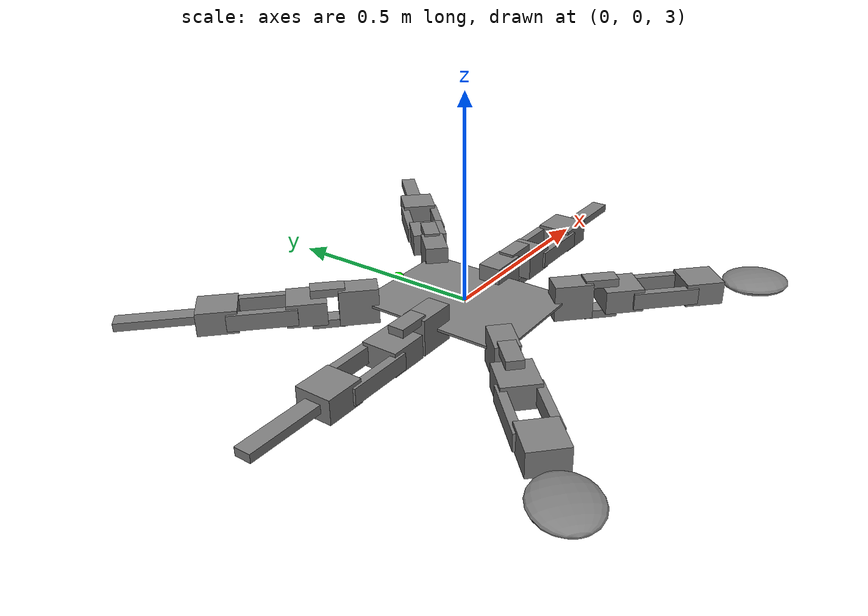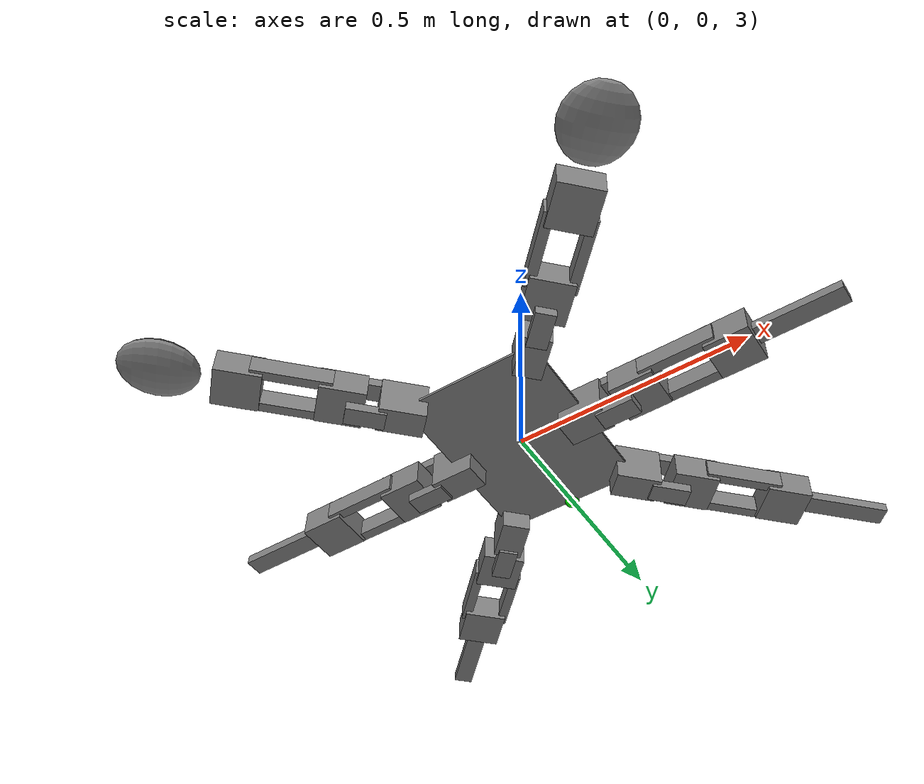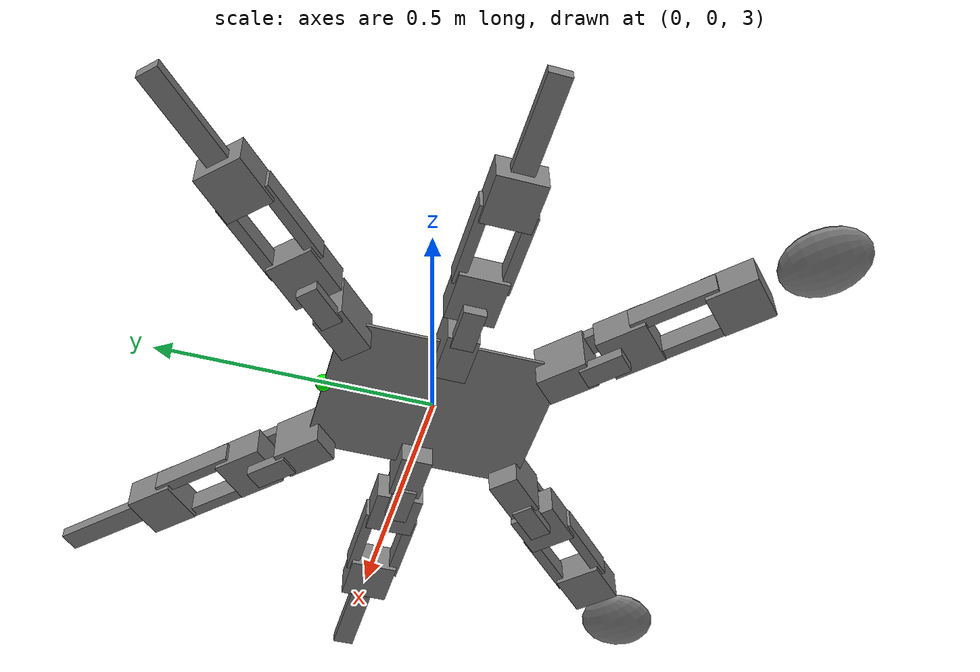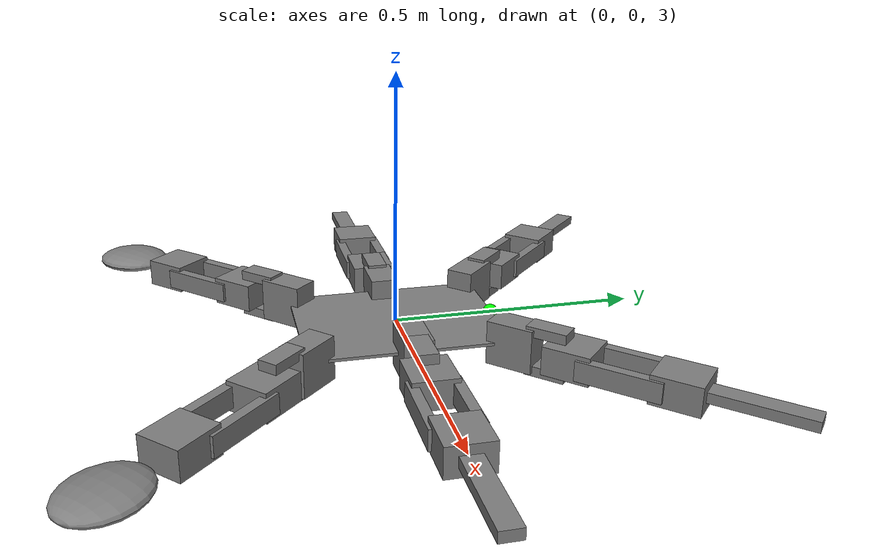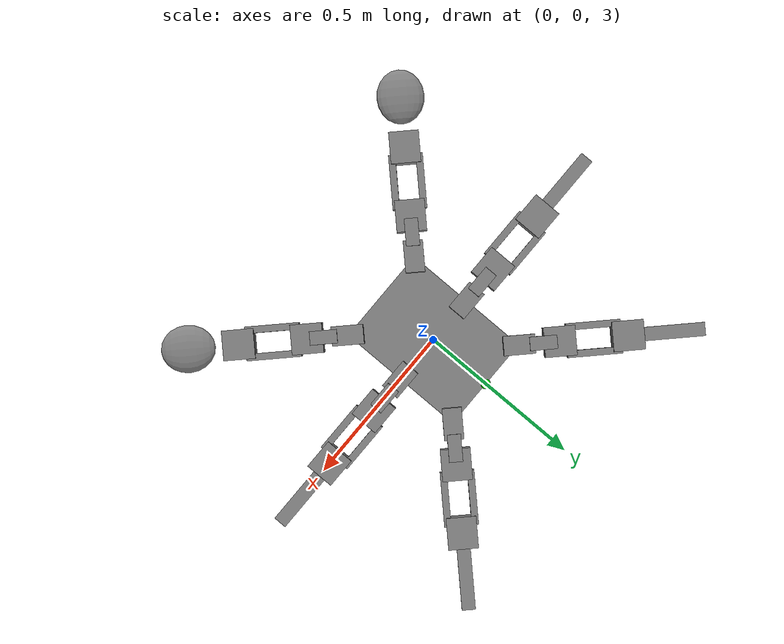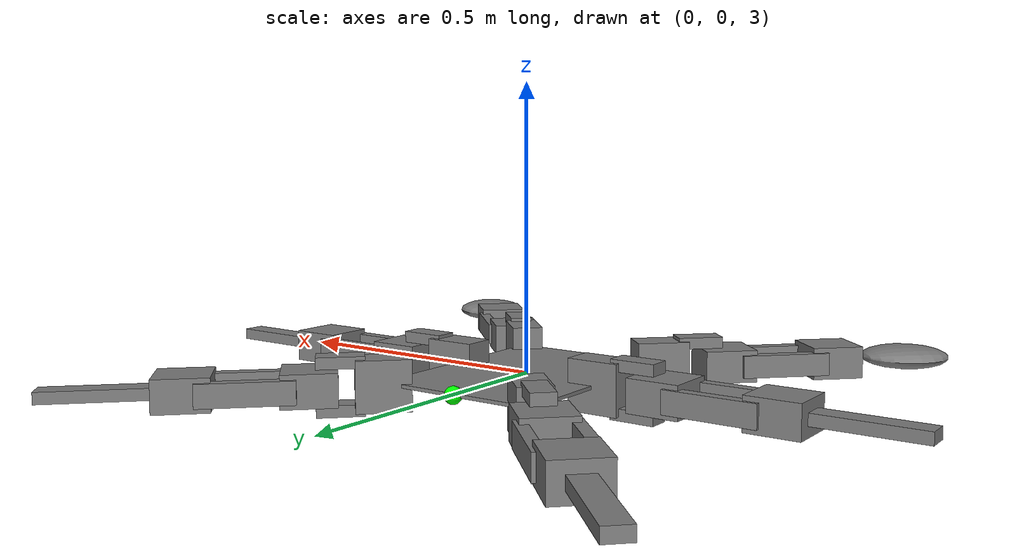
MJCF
<?xml version='1.0' encoding='utf-8'?>
<mujoco model="hexapod">
  <option integrator="implicit" jacobian="sparse" timestep="0.005" gravity="0 0 0" density="1000" viscosity="0.0009" cone="elliptic" /><size memory="4G" />
  <include file="noground.xml" />
  <visual>
    <scale com=".5" framewidth=".05" jointwidth=".01" />
    <global offheight="2160" offwidth="1920" />
  </visual>
  <default>
    <default class="dynamixel">
      <position ctrlrange="-3.14 3.14" ctrllimited="true" forcerange="-3.1 3.1" forcelimited="true" kp="80" />
    </default>
    <default class="DVL">
      <camera mode="fixed" resolution="2 2" fovy="45" />
    </default>
  </default>

  <asset>
  </asset>
  <worldbody>
      <camera pos="0.026 1.593 4.498" xyaxes="-1.000 0.017 0.000 -0.013 -0.728 0.685" name="main_camera" />

      <body name="plate" pos="0 00 3" euler="0 0 0">
        <site name="base_cog" pos="0 0 0" size="0.005" rgba="1 0 0 0" type="sphere" /><site name="front_point" pos="0 0.20 0" size="0.015" rgba="0 1 0 1" type="sphere" /><geom fluidshape="ellipsoid" type="box" size=".15 .2 .003" mass="1" contype="0" conaffinity="0" />
        <geom fluidshape="ellipsoid" type="box" size=".0465 0.0285 .044" euler="0 0 45" pos=".15 .2 0" mass=".34" contype="0" conaffinity="0" />
        <geom fluidshape="ellipsoid" type="box" size=".0465 0.0285 .044" pos=".15 0 0" mass=".34" contype="0" conaffinity="0" />
        <geom fluidshape="ellipsoid" type="box" size=".0465 0.0285 .044" pos=".15 -0.2 0" euler="0 0 -45" mass=".34" contype="0" conaffinity="0" />
        <geom fluidshape="ellipsoid" type="box" size=".0465 0.0285 .044" pos="-.15 .2 0" euler="0 0 -45" mass=".34" contype="0" conaffinity="0" />
        <geom fluidshape="ellipsoid" type="box" size=".0465 0.0285 .044" pos="-.15 0 0" euler="0 0 0" mass=".34" contype="0" conaffinity="0" />
        <geom fluidshape="ellipsoid" type="box" size=".0465 0.0285 .044" pos="-.15 -0.2 0" euler="0 0 45" mass=".34" contype="0" conaffinity="0" />
        <camera class="DVL" name="DVLcam" pos="0 -0.15 0" euler="0 0 45" />

        <freejoint />
        <body name="box" pos="0 0 0" euler="0 0 0">
          <camera pos="-.879 0.100 0.00" euler="0 -90 0" name="plate_camera" mode="track" />
          <site name="IMU" pos="0 0.051 0" euler="0 0 0" size="0.001 0.001 0.001" rgba="1 0 0 1" type="box" />

        </body>

        <body name="proximal segment front right" pos=".15 .2 0" euler="0 0 45">
          <geom fluidshape="ellipsoid" type="box" size=".04 0.02 .01" pos=".07 0 .04" contype="0" conaffinity="0" />
          <geom fluidshape="ellipsoid" type="box" size=".04 0.02 .01" pos=".07 0 -0.04" contype="0" conaffinity="0" />
          <joint name="psfr" type="hinge" axis="0 0 1" pos="0.028 0 0" damping="1" />
          <geom fluidshape="ellipsoid" type="box" size=".0465 0.0285 .044" pos=".12 0 0" euler="90 0 0" mass=".34" contype="0" conaffinity="0" />

          <body name="mid segment front right" pos=".12 0 0" euler="90 0 0">
            <geom fluidshape="ellipsoid" type="box" size=".08 .02 0.01" pos=".1 0 0.04" contype="0" conaffinity="0" />
            <geom fluidshape="ellipsoid" type="box" size=".08 .02 0.01" pos=".1 0 -0.04" contype="0" conaffinity="0" />
            <joint name="msfr" type="hinge" axis="0 0 1" pos="0.028 0 0" damping="1" />
            <geom fluidshape="ellipsoid" type="box" size=".0465 0.0285 .044" pos=".2 0 0" mass=".34" contype="0" conaffinity="0" />

            <body name="distal segment front right" pos=".2 0 0">
              <joint name="dsfr" type="hinge" axis="0 0 1" pos="0.028 0 0" damping="1" />
              <geom fluidshape="ellipsoid" type="box" size=".02 .01 0.09887" pos="0.128 0 0" euler="0 90 0" contype="0" conaffinity="0" />
            </body>
          </body>
        </body>

        <body name="proximal segment center right" pos=".15 0 0" euler="0 0 0">
          <geom fluidshape="ellipsoid" type="box" size=".04 0.02 .01" pos=".07 0 .04" contype="0" conaffinity="0" />
          <geom fluidshape="ellipsoid" type="box" size=".04 0.02 .01" pos=".07 0 -0.04" contype="0" conaffinity="0" />
          <joint name="pscr" type="hinge" axis="0 0 1" pos="0.028 0 0" damping="1" />
          <geom fluidshape="ellipsoid" type="box" size=".0465 0.0285 .044" pos=".12 0 0" euler="90 0 0" mass=".34" contype="0" conaffinity="0" />

          <body name="mid segment center right" pos=".12 0 0" euler="90 0 0">
            <geom fluidshape="ellipsoid" type="box" size=".08 .02 0.01" pos=".1 0 0.04" contype="0" conaffinity="0" />
            <geom fluidshape="ellipsoid" type="box" size=".08 .02 0.01" pos=".1 0 -0.04" contype="0" conaffinity="0" />
            <joint name="mscr" type="hinge" axis="0 0 1" pos="0.028 0 0" damping="1" />
            <geom fluidshape="ellipsoid" type="box" size=".0465 0.0285 .044" pos=".2 0 0" mass=".34" contype="0" conaffinity="0" />

            <body name="distal segment center right" pos=".2 0 0">
              <joint name="dscr" type="hinge" axis="0 0 1" pos="0.028 0 0" damping="1" />
              <geom fluidshape="ellipsoid" type="box" size=".02 .01 0.09887" pos="0.128 0 0" euler="0 90 0" contype="0" conaffinity="0" />
            </body>
          </body>
        </body>

        <body name="proximal segment back right" pos=".15 -.2 0" euler="0 0 -45">
          <geom fluidshape="ellipsoid" type="box" size=".04 0.02 .01" pos=".07 0 .04" contype="0" conaffinity="0" />
          <geom fluidshape="ellipsoid" type="box" size=".04 0.02 .01" pos=".07 0 -0.04" contype="0" conaffinity="0" />
          <joint name="psbr" type="hinge" axis="0 0 1" pos="0.028 0 0" damping="1" />
          <geom fluidshape="ellipsoid" type="box" size=".0465 0.0285 .044" pos=".12 0 0" euler="90 0 0" mass=".34" contype="0" conaffinity="0" />

          <body name="mid segment back right" pos=".12 0 0" euler="90 0 0">
            <geom fluidshape="ellipsoid" type="box" size=".08 .02 0.01" pos=".1 0 0.04" contype="0" conaffinity="0" />
            <geom fluidshape="ellipsoid" type="box" size=".08 .02 0.01" pos=".1 0 -0.04" contype="0" conaffinity="0" />
            <joint name="msbr" type="hinge" axis="0 0 1" pos="0.028 0 0" damping="1" />
            <geom fluidshape="ellipsoid" type="box" size=".0465 0.0285 .044" pos=".2 0 0" mass=".34" contype="0" conaffinity="0" />

            <body name="distal segment back right" pos=".2 0 0">
              <joint name="dsbr" type="hinge" axis="1 0 0" pos="0.028 0 0" damping="1" />
              <geom fluidshape="ellipsoid" type="ellipsoid" size=".07 0.02 0.08" pos="0.15 0 0" euler="0 90 0" mass="0.34" contype="0" conaffinity="0" />
            </body>

          </body>
        </body>

        <body name="proximal segment front left" pos="-.15 .2 0" euler="0 180 45">
          <geom fluidshape="ellipsoid" type="box" size=".04 0.02 .01" pos=".07 0 .04" contype="0" conaffinity="0" />
          <geom fluidshape="ellipsoid" type="box" size=".04 0.02 .01" pos=".07 0 -0.04" contype="0" conaffinity="0" />
          <joint name="psfl" type="hinge" axis="0 0 -1" pos="0.028 0 0" damping="1" />
          <geom fluidshape="ellipsoid" type="box" size=".0465 0.0285 .044" pos=".12 0 0" euler="90 0 0" mass=".34" contype="0" conaffinity="0" />

          <body name="mid segment front left" pos=".12 0 0" euler="90 0 0">
            <geom fluidshape="ellipsoid" type="box" size=".08 .02 0.01" pos=".1 0 0.04" contype="0" conaffinity="0" />
            <geom fluidshape="ellipsoid" type="box" size=".08 .02 0.01" pos=".1 0 -0.04" contype="0" conaffinity="0" />
            <joint name="msfl" type="hinge" axis="0 0 -1" pos="0.028 0 0" damping="1" />
            <geom fluidshape="ellipsoid" type="box" size=".0465 0.0285 .044" pos=".2 0 0" mass=".34" contype="0" conaffinity="0" />

            <body name="distal segment front left" pos=".2 0 0">
              <joint name="dsfl" type="hinge" axis="0 0 -1" pos="0.028 0 0" damping="1" />
              <geom fluidshape="ellipsoid" type="box" size=".02 .01 0.09887" pos="0.128 0 0" euler="0 90 0" contype="0" conaffinity="0" />
            </body>
          </body>
        </body>

        <body name="proximal segment center left" pos="-.15 0 0" euler="0 180 0">
          <geom fluidshape="ellipsoid" type="box" size=".04 0.02 .01" pos=".07 0 .04" contype="0" conaffinity="0" />
          <geom fluidshape="ellipsoid" type="box" size=".04 0.02 .01" pos=".07 0 -0.04" contype="0" conaffinity="0" />
          <joint name="pscl" type="hinge" axis="0 0 -1" pos="0.028 0 0" damping="1" />
          <geom fluidshape="ellipsoid" type="box" size=".0465 0.0285 .044" pos=".12 0 0" euler="90 0 0" mass=".34" contype="0" conaffinity="0" />

          <body name="mid segment center left" pos=".12 0 0" euler="90 0 0">
            <geom fluidshape="ellipsoid" type="box" size=".08 .02 0.01" pos=".1 0 0.04" contype="0" conaffinity="0" />
            <geom fluidshape="ellipsoid" type="box" size=".08 .02 0.01" pos=".1 0 -0.04" contype="0" conaffinity="0" />
            <joint name="mscl" type="hinge" axis="0 0 -1" pos="0.028 0 0" damping="1" />
            <geom fluidshape="ellipsoid" type="box" size=".0465 0.0285 .044" pos=".2 0 0" mass=".34" contype="0" conaffinity="0" />

            <body name="distal segment center left" pos=".2 0 0">
              <joint name="dscl" type="hinge" axis="0 0 -1" pos="0.028 0 0" damping="1" />
              <geom fluidshape="ellipsoid" type="box" size=".02 .01 0.09887" pos="0.128 0 0" euler="0 90 0" contype="0" conaffinity="0" />
            </body>
          </body>
        </body>

        <body name="proximal segment back left" pos="-.15 -.2 0" euler="0 180 -45">
          <geom fluidshape="ellipsoid" type="box" size=".04 0.02 .01" pos=".07 0 .04" contype="0" conaffinity="0" />
          <geom fluidshape="ellipsoid" type="box" size=".04 0.02 .01" pos=".07 0 -0.04" contype="0" conaffinity="0" />
          <joint name="psbl" type="hinge" axis="0 0 -1" pos="0.028 0 0" damping="1" />
          <geom fluidshape="ellipsoid" type="box" size=".0465 0.0285 .044" pos=".12 0 0" euler="90 0 0" mass=".34" contype="0" conaffinity="0" />

          <body name="mid segment back left" pos=".12 0 0" euler="90 0 0">
            <geom fluidshape="ellipsoid" type="box" size=".08 .02 0.01" pos=".1 0 0.04" contype="0" conaffinity="0" />
            <geom fluidshape="ellipsoid" type="box" size=".08 .02 0.01" pos=".1 0 -0.04" contype="0" conaffinity="0" />
            <joint name="msbl" type="hinge" axis="0 0 -1" pos="0.028 0 0" damping="1" />
            <geom fluidshape="ellipsoid" type="box" size=".0465 0.0285 .044" pos=".2 0 0" mass=".34" contype="0" conaffinity="0" />

            <body name="distal segment back left" pos=".2 0 0">
              <joint name="dsbl" type="hinge" axis="-1 0 0" pos="0.028 0 0" damping="1" />
              <geom fluidshape="ellipsoid" type="ellipsoid" size=".07 0.02 0.08" pos="0.15 0 0" euler="0 90 0" mass="0.34" contype="0" conaffinity="0" />
            </body>
          </body>
        </body>

      </body>

  </worldbody>
  <actuator>
    <position name="R1_1" joint="psfr" class="dynamixel" ctrlrange="-0.9 0.9" ctrllimited="true" />
    <position name="R1_2" joint="msfr" class="dynamixel" ctrlrange="-0.9 0.9" ctrllimited="true" />
    <position name="R1_3" joint="dsfr" class="dynamixel" ctrlrange="-0.9 0.9" ctrllimited="true" />

    <position name="R2_1" joint="pscr" class="dynamixel" ctrlrange="-1.0 1.0" ctrllimited="true" />
    <position name="R2_2" joint="mscr" class="dynamixel" ctrlrange="-1.0 1.0" ctrllimited="true" />
    <position name="R2_3" joint="dscr" class="dynamixel" ctrlrange="-1.0 1.0" ctrllimited="true" />

    <position name="R3_1" joint="psbr" class="dynamixel" ctrlrange="-1.2 1.2" ctrllimited="true" />
    <position name="R3_2" joint="msbr" class="dynamixel" ctrlrange="-1.2 1.2" ctrllimited="true" />
    <position name="R3_3" joint="dsbr" class="dynamixel" ctrlrange="-1.5 1.5" ctrllimited="true" />

    <position name="L1_1" joint="psfl" class="dynamixel" ctrlrange="-0.9 0.9" ctrllimited="true" />
    <position name="L1_2" joint="msfl" class="dynamixel" ctrlrange="-0.9 0.9" ctrllimited="true" />
    <position name="L1_3" joint="dsfl" class="dynamixel" ctrlrange="-0.9 0.9" ctrllimited="true" />

    <position name="L2_1" joint="pscl" class="dynamixel" ctrlrange="-1.0 1.0" ctrllimited="true" />
    <position name="L2_2" joint="mscl" class="dynamixel" ctrlrange="-1.0 1.0" ctrllimited="true" />
    <position name="L2_3" joint="dscl" class="dynamixel" ctrlrange="-1.0 1.0" ctrllimited="true" />

    <position name="L3_1" joint="psbl" class="dynamixel" ctrlrange="-1.2 1.2" ctrllimited="true" />
    <position name="L3_2" joint="msbl" class="dynamixel" ctrlrange="-1.2 1.2" ctrllimited="true" />
    <position name="L3_3" joint="dsbl" class="dynamixel" ctrlrange="-1.5 1.5" ctrllimited="true" />

  </actuator>
</mujoco>

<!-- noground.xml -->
<mujoco>
  <!-- No ground plane for fluid environments -->
  <worldbody>
    <!-- Empty worldbody content - ground plane not included -->
  </worldbody>
</mujoco>
